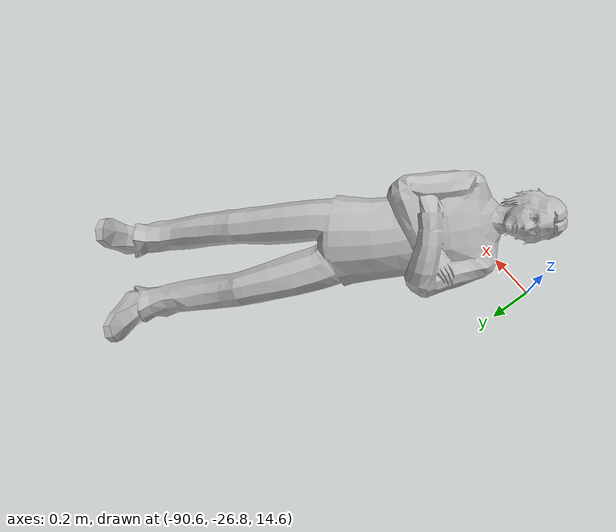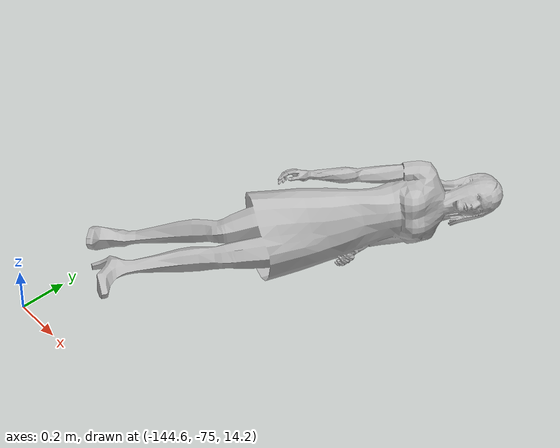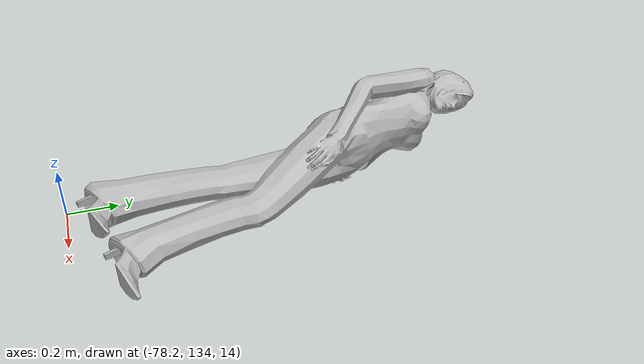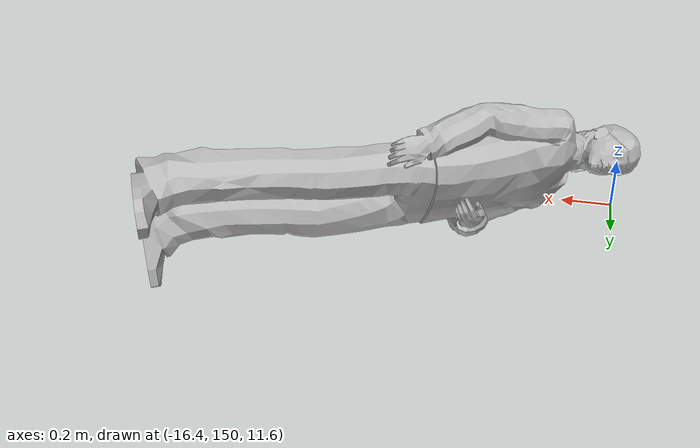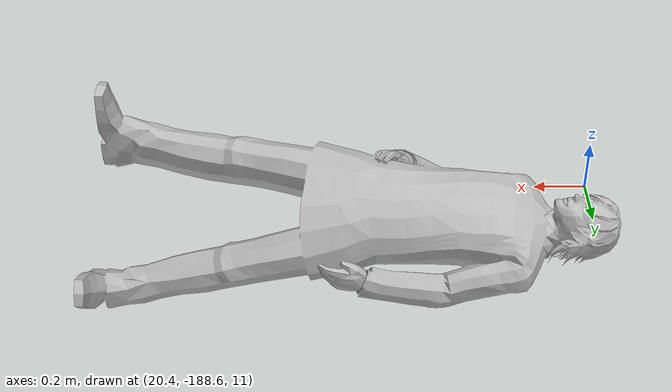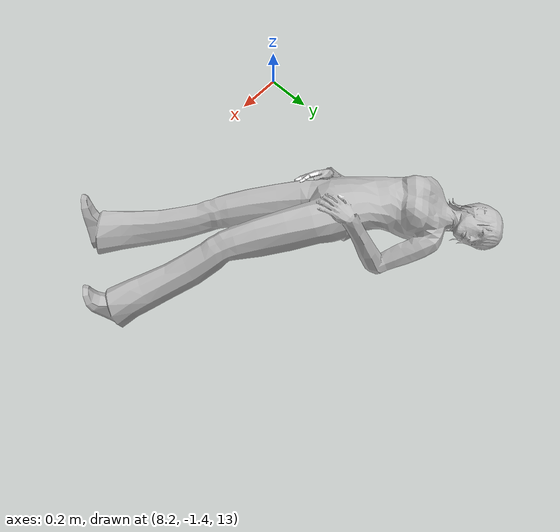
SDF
<sdf version="1.4">
 <world name="default">
  <light name="sun" type="directional">
   <pose>0 0 10 0 -0 0</pose>
   <diffuse>0.8 0.8 0.8 1</diffuse>
   <specular>0.2 0.2 0.2 1</specular>
   <attenuation>
    <range>1000</range>
    <constant>0.9</constant>
    <linear>0.01</linear>
    <quadratic>0.001</quadratic>
   </attenuation>
   <direction>-0.5 0.1 -0.9</direction>
  </light>
  <model name="person2">
   <pose>21.1471 -187.942 11.3412 -1.5708 0.570421 1.48365</pose>
   <static>1</static>
   <link name="body2">
    <visual name="visual2"><geometry><mesh><uri>model://person2.dae</uri></mesh></geometry></visual>
   </link>
  </model>
  <model name="person3">
   <pose>-78 135 14.4262 2.20043 1.57079 -2.15498</pose>
   <static>1</static>
   <link name="body3">
    <visual name="visual3"><geometry><mesh><uri>model://person3.dae</uri></mesh></geometry></visual>
   </link>
  </model>
  <model name="person4">
   <pose>-15.7117 150.48 11.8972 1.5708 1.07664 -1.06413</pose>
   <static>1</static>
   <link name="body4">
    <visual name="visual4"><geometry><mesh><uri>model://person4.dae</uri></mesh></geometry></visual>
   </link>
  </model>
  <model name="person5">
   <pose>-90.1914 -26.1141 14.9547 -1.30553 0.633154 2.68612</pose>
   <static>1</static>
   <link name="body5">
    <visual name="visual5"><geometry><mesh><uri>model://person5.dae</uri></mesh></geometry></visual>
   </link>
  </model>
  <model name="person6">
   <pose>-144 -74 14.5488 -1.5708 1.29221 -0.429407</pose>
   <static>1</static>
   <link name="body6">
    <visual name="visual6"><geometry><mesh><uri>model://person6.dae</uri></mesh></geometry></visual>
   </link>
  </model>
  <model name="person7">
   <pose>8.683670 -0.596925 13.206353 -1.570797 -0.550849 0.853782</pose>
   <static>1</static>
   <link name="body7">
    <visual name="visual7"><geometry><mesh><uri>model://person7.dae</uri></mesh></geometry></visual>
   </link>
  </model>
 </world>
</sdf>
